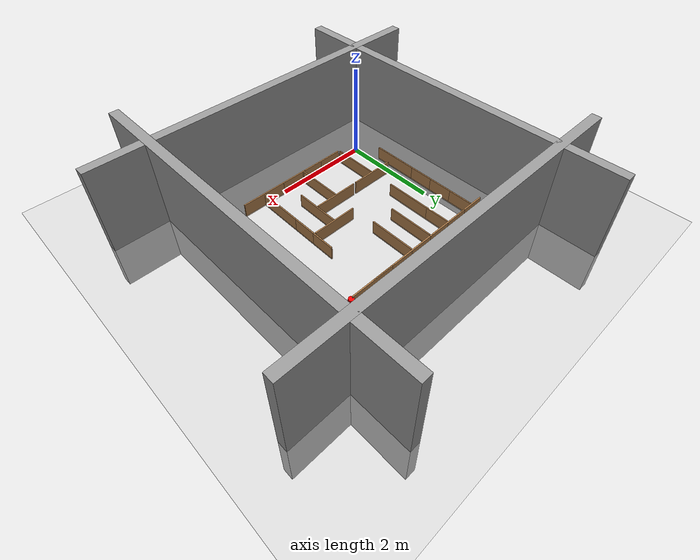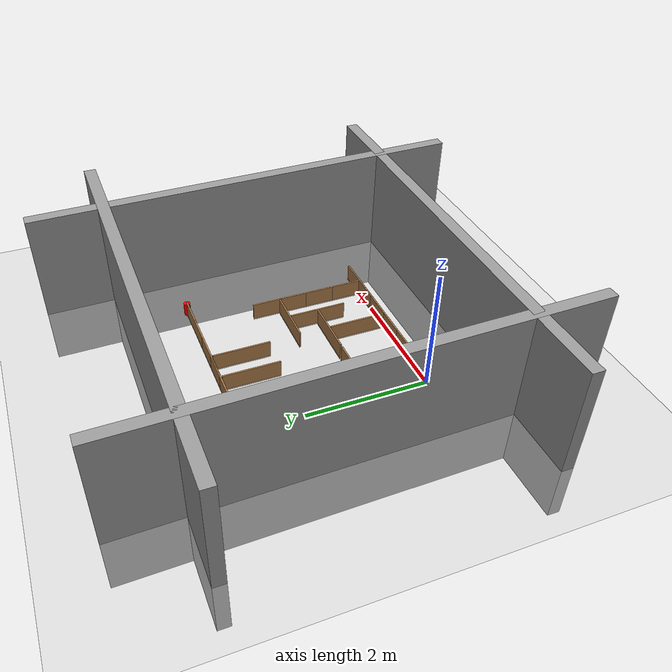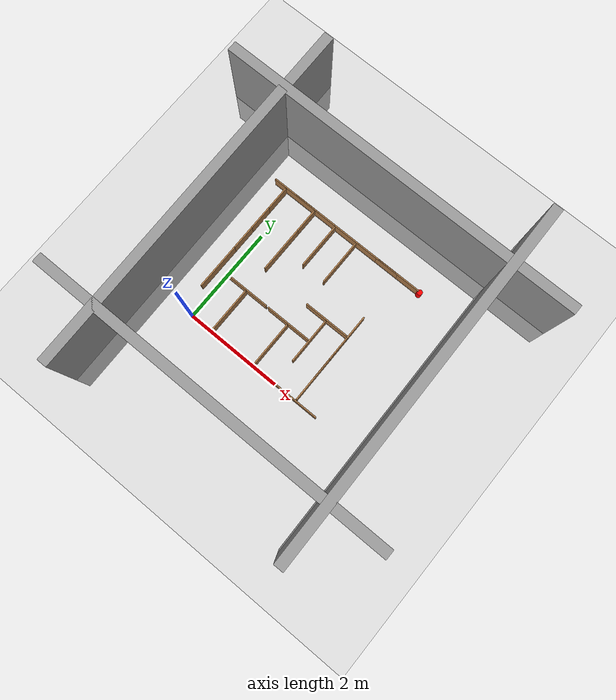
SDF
<sdf version="1.6">
 <world name="default">
  <light name="sun" type="directional">
   <pose>0 0 10 0 -0 0</pose>
   <diffuse>0.8 0.8 0.8 1</diffuse>
   <specular>0.1 0.1 0.1 1</specular>
   <attenuation>
    <range>1000</range>
    <constant>0.9</constant>
    <linear>0.01</linear>
    <quadratic>0.001</quadratic>
   </attenuation>
   <direction>-0.5 0.5 -1</direction>
  </light>
  <model name="ground_plane">
   <static>1</static>
   <link name="link">
    <collision name="collision">
     <geometry><plane><normal>0 0 1</normal><size>100 100</size></plane></geometry>
     <surface><friction><ode><mu>100</mu><mu2>50</mu2></ode></friction></surface>
    </collision>
    <visual name="visual">
     <cast_shadows>0</cast_shadows>
     <geometry><plane><normal>0 0 1</normal><size>100 100</size></plane></geometry>
     <material>
      <script><uri>file://media/materials/scripts/gazebo.material</uri><name>Gazebo/Grey</name></script>
     </material>
    </visual>
   </link>
  </model>
  <gravity>0 0 -9.8</gravity>
  <magnetic_field>6e-06 2.3e-05 -4.2e-05</magnetic_field>
  <atmosphere type="adiabatic"/>
  <physics name="default_physics" default="0" type="ode">
   <max_step_size>0.001</max_step_size>
   <real_time_factor>1</real_time_factor>
   <real_time_update_rate>1000</real_time_update_rate>
  </physics>
  <scene><ambient>0.4 0.4 0.4 1</ambient><background>0.7 0.7 0.7 1</background><shadows>1</shadows></scene>
  <spherical_coordinates>
   <surface_model>EARTH_WGS84</surface_model>
   <latitude_deg>0</latitude_deg>
   <longitude_deg>0</longitude_deg>
   <elevation>0</elevation>
   <heading_deg>0</heading_deg>
  </spherical_coordinates>
  <model name="goal">
   <link name="link">
    <pose>0 0 0.115 0 -0 0</pose>
    <inertial>
     <mass>0.0005</mass>
     <inertia><ixx>0.00058</ixx><ixy>0</ixy><ixz>0</ixz><iyy>0.00058</iyy><iyz>0</iyz><izz>0.00019</izz></inertia>
    </inertial>
    <visual name="visual">
     <geometry><cylinder><radius>0.055</radius><length>0.23</length></cylinder></geometry>
     <material>
      <script>
       <uri>model://beer/materials/scripts</uri>
       <uri>model://beer/materials/textures</uri>
       <name>Beer/Diffuse</name>
      </script>
      <ambient>1 0 0 1</ambient>
      <diffuse>1 0 0 1</diffuse>
      <specular>0 0 0 1</specular>
      <emissive>0 0 0 1</emissive>
      <shader type="vertex"><normal_map>__default__</normal_map></shader>
     </material>
    </visual>
    <collision name="collision">
     <geometry><cylinder><radius>0.055</radius><length>0.23</length></cylinder></geometry>
     <surface>
      <friction>
       <ode><mu>1</mu><mu2>1</mu2><fdir1>0 0 0</fdir1><slip1>0</slip1><slip2>0</slip2></ode>
       <torsional>
        <coefficient>1</coefficient>
        <patch_radius>0</patch_radius>
        <surface_radius>0</surface_radius>
        <use_patch_radius>1</use_patch_radius>
        <ode><slip>0</slip></ode>
       </torsional>
      </friction>
      <bounce><restitution_coefficient>0</restitution_coefficient><threshold>1e+06</threshold></bounce>
      <contact>
       <collide_without_contact>0</collide_without_contact>
       <collide_without_contact_bitmask>1</collide_without_contact_bitmask>
       <collide_bitmask>1</collide_bitmask>
       <ode>
        <soft_cfm>0</soft_cfm>
        <soft_erp>0.2</soft_erp>
        <kp>1e+13</kp>
        <kd>1</kd>
        <max_vel>0.01</max_vel>
        <min_depth>0</min_depth>
       </ode>
       <bullet>
        <split_impulse>1</split_impulse>
        <split_impulse_penetration_threshold>-0.01</split_impulse_penetration_threshold>
        <soft_cfm>0</soft_cfm>
        <soft_erp>0.2</soft_erp>
        <kp>1e+13</kp>
        <kd>1</kd>
       </bullet>
      </contact>
     </surface>
    </collision>
   </link>
   <static>0</static>
   <pose>3.0 3.0 -9e-06 -1e-06 -4e-06 0</pose>
  </model>
  <model name="wall1">
   <static>1</static>
   <link name="link">
    <pose>0 0 0.42 0 -0 0</pose>
    <collision name="collision"><geometry><box><size>7.5 0.2 2.8</size></box></geometry></collision>
    <visual name="visual">
     <cast_shadows>0</cast_shadows>
     <geometry><box><size>7.5 0.2 2.8</size></box></geometry>
     <material>
      <script>
       <uri>model://grey_wall/materials/scripts</uri>
       <uri>model://grey_wall/materials/textures</uri>
       <name>vrc/grey_wall</name>
      </script>
     </material>
    </visual>
   </link>
   <pose>-1 1.5 0 0 -0 -1.55905</pose>
  </model>
  <model name="wall2">
   <static>1</static>
   <link name="link">
    <pose>0 0 0.42 0 -0 0</pose>
    <collision name="collision"><geometry><box><size>7.5 0.2 2.8</size></box></geometry></collision>
    <visual name="visual">
     <cast_shadows>0</cast_shadows>
     <geometry><box><size>7.5 0.2 2.8</size></box></geometry>
     <material>
      <script>
       <uri>model://grey_wall/materials/scripts</uri>
       <uri>model://grey_wall/materials/textures</uri>
       <name>vrc/grey_wall</name>
      </script>
     </material>
    </visual>
   </link>
   <pose>1.5 4.0 0 0 -0 0</pose>
  </model>
  <model name="wall3">
   <static>1</static>
   <link name="link">
    <pose>0 0 0.42 0 -0 0</pose>
    <collision name="collision"><geometry><box><size>7.5 0.2 2.8</size></box></geometry></collision>
    <visual name="visual">
     <cast_shadows>0</cast_shadows>
     <geometry><box><size>7.5 0.2 2.8</size></box></geometry>
     <material>
      <script>
       <uri>model://grey_wall/materials/scripts</uri>
       <uri>model://grey_wall/materials/textures</uri>
       <name>vrc/grey_wall</name>
      </script>
     </material>
    </visual>
   </link>
   <pose>4.0 1.5 0 0 -0 -1.55905</pose>
  </model>
  <model name="wall4">
   <static>1</static>
   <link name="link">
    <pose>0 0 0.42 0 -0 0</pose>
    <collision name="collision"><geometry><box><size>7.5 0.2 2.8</size></box></geometry></collision>
    <visual name="visual">
     <cast_shadows>0</cast_shadows>
     <geometry><box><size>7.5 0.2 2.8</size></box></geometry>
     <material>
      <script>
       <uri>model://grey_wall/materials/scripts</uri>
       <uri>model://grey_wall/materials/textures</uri>
       <name>vrc/grey_wall</name>
      </script>
     </material>
    </visual>
   </link>
   <pose>1.5 -1 0 0 -0 0</pose>
  </model>
  <model name="can-0.21.0">
   <link name="link">
    <pose>0 0 0.115 0 -0 0</pose>
    <inertial>
     <mass>0.39</mass>
     <inertia><ixx>0.00058</ixx><ixy>0</ixy><ixz>0</ixz><iyy>0.00058</iyy><iyz>0</iyz><izz>0.00019</izz></inertia>
    </inertial>
    <collision name="collision"><geometry><box><size>0.025 0.95 0.3</size></box></geometry></collision>
    <visual name="visual">
     <geometry><box><size>0.025 0.95 0.3</size></box></geometry>
     <material>
      <script><uri>file://media/materials/scripts/gazebo.material</uri><name>Gazebo/Wood</name></script>
     </material>
    </visual>
   </link>
   <pose>-0.2 1.0 -2e-06 1e-06 0 -9.5e-05</pose>
  </model>
  <model name="can-0.21.5">
   <link name="link">
    <pose>0 0 0.115 0 -0 0</pose>
    <inertial>
     <mass>0.39</mass>
     <inertia><ixx>0.00058</ixx><ixy>0</ixy><ixz>0</ixz><iyy>0.00058</iyy><iyz>0</iyz><izz>0.00019</izz></inertia>
    </inertial>
    <collision name="collision"><geometry><box><size>0.025 0.95 0.3</size></box></geometry></collision>
    <visual name="visual">
     <geometry><box><size>0.025 0.95 0.3</size></box></geometry>
     <material>
      <script><uri>file://media/materials/scripts/gazebo.material</uri><name>Gazebo/Wood</name></script>
     </material>
    </visual>
   </link>
   <pose>-0.2 1.5 -2e-06 1e-06 0 -9.5e-05</pose>
  </model>
  <model name="can-0.22.0">
   <link name="link">
    <pose>0 0 0.115 0 -0 0</pose>
    <inertial>
     <mass>0.39</mass>
     <inertia><ixx>0.00058</ixx><ixy>0</ixy><ixz>0</ixz><iyy>0.00058</iyy><iyz>0</iyz><izz>0.00019</izz></inertia>
    </inertial>
    <collision name="collision"><geometry><box><size>0.025 0.95 0.3</size></box></geometry></collision>
    <visual name="visual">
     <geometry><box><size>0.025 0.95 0.3</size></box></geometry>
     <material>
      <script><uri>file://media/materials/scripts/gazebo.material</uri><name>Gazebo/Wood</name></script>
     </material>
    </visual>
   </link>
   <pose>-0.2 2.0 -2e-06 1e-06 0 -9.5e-05</pose>
  </model>
  <model name="can-0.22.5">
   <link name="link">
    <pose>0 0 0.115 0 -0 0</pose>
    <inertial>
     <mass>0.39</mass>
     <inertia><ixx>0.00058</ixx><ixy>0</ixy><ixz>0</ixz><iyy>0.00058</iyy><iyz>0</iyz><izz>0.00019</izz></inertia>
    </inertial>
    <collision name="collision"><geometry><box><size>0.025 0.95 0.3</size></box></geometry></collision>
    <visual name="visual">
     <geometry><box><size>0.025 0.95 0.3</size></box></geometry>
     <material>
      <script><uri>file://media/materials/scripts/gazebo.material</uri><name>Gazebo/Wood</name></script>
     </material>
    </visual>
   </link>
   <pose>-0.2 2.5 -2e-06 1e-06 0 -9.5e-05</pose>
  </model>
  <model name="can0.03.0">
   <link name="link">
    <pose>0 0 0.115 0 -0 0</pose>
    <inertial>
     <mass>0.39</mass>
     <inertia><ixx>0.00058</ixx><ixy>0</ixy><ixz>0</ixz><iyy>0.00058</iyy><iyz>0</iyz><izz>0.00019</izz></inertia>
    </inertial>
    <collision name="collision"><geometry><box><size>0.95 0.025 0.3</size></box></geometry></collision>
    <visual name="visual">
     <geometry><box><size>0.95 0.025 0.3</size></box></geometry>
     <material>
      <script><uri>file://media/materials/scripts/gazebo.material</uri><name>Gazebo/Wood</name></script>
     </material>
    </visual>
   </link>
   <pose>0.0 3.0 -2e-06 1e-06 0 -9.5e-05</pose>
  </model>
  <model name="can0.50.5">
   <link name="link">
    <pose>0 0 0.115 0 -0 0</pose>
    <inertial>
     <mass>0.39</mass>
     <inertia><ixx>0.00058</ixx><ixy>0</ixy><ixz>0</ixz><iyy>0.00058</iyy><iyz>0</iyz><izz>0.00019</izz></inertia>
    </inertial>
    <collision name="collision"><geometry><box><size>0.025 0.95 0.3</size></box></geometry></collision>
    <visual name="visual">
     <geometry><box><size>0.025 0.95 0.3</size></box></geometry>
     <material>
      <script><uri>file://media/materials/scripts/gazebo.material</uri><name>Gazebo/Wood</name></script>
     </material>
    </visual>
   </link>
   <pose>0.5 0.5 -2e-06 1e-06 0 -9.5e-05</pose>
  </model>
  <model name="can0.51.0">
   <link name="link">
    <pose>0 0 0.115 0 -0 0</pose>
    <inertial>
     <mass>0.39</mass>
     <inertia><ixx>0.00058</ixx><ixy>0</ixy><ixz>0</ixz><iyy>0.00058</iyy><iyz>0</iyz><izz>0.00019</izz></inertia>
    </inertial>
    <collision name="collision"><geometry><box><size>0.95 0.025 0.3</size></box></geometry></collision>
    <visual name="visual">
     <geometry><box><size>0.95 0.025 0.3</size></box></geometry>
     <material>
      <script><uri>file://media/materials/scripts/gazebo.material</uri><name>Gazebo/Wood</name></script>
     </material>
    </visual>
   </link>
   <pose>0.5 1.0 -2e-06 1e-06 0 -9.5e-05</pose>
  </model>
  <model name="can0.52.0">
   <link name="link">
    <pose>0 0 0.115 0 -0 0</pose>
    <inertial>
     <mass>0.39</mass>
     <inertia><ixx>0.00058</ixx><ixy>0</ixy><ixz>0</ixz><iyy>0.00058</iyy><iyz>0</iyz><izz>0.00019</izz></inertia>
    </inertial>
    <collision name="collision"><geometry><box><size>0.025 0.95 0.3</size></box></geometry></collision>
    <visual name="visual">
     <geometry><box><size>0.025 0.95 0.3</size></box></geometry>
     <material>
      <script><uri>file://media/materials/scripts/gazebo.material</uri><name>Gazebo/Wood</name></script>
     </material>
    </visual>
   </link>
   <pose>0.5 2.0 -2e-06 1e-06 0 -9.5e-05</pose>
  </model>
  <model name="can0.52.5">
   <link name="link">
    <pose>0 0 0.115 0 -0 0</pose>
    <inertial>
     <mass>0.39</mass>
     <inertia><ixx>0.00058</ixx><ixy>0</ixy><ixz>0</ixz><iyy>0.00058</iyy><iyz>0</iyz><izz>0.00019</izz></inertia>
    </inertial>
    <collision name="collision"><geometry><box><size>0.025 0.95 0.3</size></box></geometry></collision>
    <visual name="visual">
     <geometry><box><size>0.025 0.95 0.3</size></box></geometry>
     <material>
      <script><uri>file://media/materials/scripts/gazebo.material</uri><name>Gazebo/Wood</name></script>
     </material>
    </visual>
   </link>
   <pose>0.5 2.5 -2e-06 1e-06 0 -9.5e-05</pose>
  </model>
  <model name="can0.53.0">
   <link name="link">
    <pose>0 0 0.115 0 -0 0</pose>
    <inertial>
     <mass>0.39</mass>
     <inertia><ixx>0.00058</ixx><ixy>0</ixy><ixz>0</ixz><iyy>0.00058</iyy><iyz>0</iyz><izz>0.00019</izz></inertia>
    </inertial>
    <collision name="collision"><geometry><box><size>0.95 0.025 0.3</size></box></geometry></collision>
    <visual name="visual">
     <geometry><box><size>0.95 0.025 0.3</size></box></geometry>
     <material>
      <script><uri>file://media/materials/scripts/gazebo.material</uri><name>Gazebo/Wood</name></script>
     </material>
    </visual>
   </link>
   <pose>0.5 3.0 -2e-06 1e-06 0 -9.5e-05</pose>
  </model>
  <model name="can1.00.0">
   <link name="link">
    <pose>0 0 0.115 0 -0 0</pose>
    <inertial>
     <mass>0.39</mass>
     <inertia><ixx>0.00058</ixx><ixy>0</ixy><ixz>0</ixz><iyy>0.00058</iyy><iyz>0</iyz><izz>0.00019</izz></inertia>
    </inertial>
    <collision name="collision"><geometry><box><size>0.95 0.025 0.3</size></box></geometry></collision>
    <visual name="visual">
     <geometry><box><size>0.95 0.025 0.3</size></box></geometry>
     <material>
      <script><uri>file://media/materials/scripts/gazebo.material</uri><name>Gazebo/Wood</name></script>
     </material>
    </visual>
   </link>
   <pose>1.0 0.0 -2e-06 1e-06 0 -9.5e-05</pose>
  </model>
  <model name="can1.02.5">
   <link name="link">
    <pose>0 0 0.115 0 -0 0</pose>
    <inertial>
     <mass>0.39</mass>
     <inertia><ixx>0.00058</ixx><ixy>0</ixy><ixz>0</ixz><iyy>0.00058</iyy><iyz>0</iyz><izz>0.00019</izz></inertia>
    </inertial>
    <collision name="collision"><geometry><box><size>0.025 0.95 0.3</size></box></geometry></collision>
    <visual name="visual">
     <geometry><box><size>0.025 0.95 0.3</size></box></geometry>
     <material>
      <script><uri>file://media/materials/scripts/gazebo.material</uri><name>Gazebo/Wood</name></script>
     </material>
    </visual>
   </link>
   <pose>1.0 2.5 -2e-06 1e-06 0 -9.5e-05</pose>
  </model>
  <model name="can1.03.0">
   <link name="link">
    <pose>0 0 0.115 0 -0 0</pose>
    <inertial>
     <mass>0.39</mass>
     <inertia><ixx>0.00058</ixx><ixy>0</ixy><ixz>0</ixz><iyy>0.00058</iyy><iyz>0</iyz><izz>0.00019</izz></inertia>
    </inertial>
    <collision name="collision"><geometry><box><size>0.95 0.025 0.3</size></box></geometry></collision>
    <visual name="visual">
     <geometry><box><size>0.95 0.025 0.3</size></box></geometry>
     <material>
      <script><uri>file://media/materials/scripts/gazebo.material</uri><name>Gazebo/Wood</name></script>
     </material>
    </visual>
   </link>
   <pose>1.0 3.0 -2e-06 1e-06 0 -9.5e-05</pose>
  </model>
  <model name="can1.50.0">
   <link name="link">
    <pose>0 0 0.115 0 -0 0</pose>
    <inertial>
     <mass>0.39</mass>
     <inertia><ixx>0.00058</ixx><ixy>0</ixy><ixz>0</ixz><iyy>0.00058</iyy><iyz>0</iyz><izz>0.00019</izz></inertia>
    </inertial>
    <collision name="collision"><geometry><box><size>0.95 0.025 0.3</size></box></geometry></collision>
    <visual name="visual">
     <geometry><box><size>0.95 0.025 0.3</size></box></geometry>
     <material>
      <script><uri>file://media/materials/scripts/gazebo.material</uri><name>Gazebo/Wood</name></script>
     </material>
    </visual>
   </link>
   <pose>1.5 0.0 -2e-06 1e-06 0 -9.5e-05</pose>
  </model>
  <model name="can1.50.5">
   <link name="link">
    <pose>0 0 0.115 0 -0 0</pose>
    <inertial>
     <mass>0.39</mass>
     <inertia><ixx>0.00058</ixx><ixy>0</ixy><ixz>0</ixz><iyy>0.00058</iyy><iyz>0</iyz><izz>0.00019</izz></inertia>
    </inertial>
    <collision name="collision"><geometry><box><size>0.025 0.95 0.3</size></box></geometry></collision>
    <visual name="visual">
     <geometry><box><size>0.025 0.95 0.3</size></box></geometry>
     <material>
      <script><uri>file://media/materials/scripts/gazebo.material</uri><name>Gazebo/Wood</name></script>
     </material>
    </visual>
   </link>
   <pose>1.5 0.5 -2e-06 1e-06 0 -9.5e-05</pose>
  </model>
  <model name="can1.51.0">
   <link name="link">
    <pose>0 0 0.115 0 -0 0</pose>
    <inertial>
     <mass>0.39</mass>
     <inertia><ixx>0.00058</ixx><ixy>0</ixy><ixz>0</ixz><iyy>0.00058</iyy><iyz>0</iyz><izz>0.00019</izz></inertia>
    </inertial>
    <collision name="collision"><geometry><box><size>0.95 0.025 0.3</size></box></geometry></collision>
    <visual name="visual">
     <geometry><box><size>0.95 0.025 0.3</size></box></geometry>
     <material>
      <script><uri>file://media/materials/scripts/gazebo.material</uri><name>Gazebo/Wood</name></script>
     </material>
    </visual>
   </link>
   <pose>1.5 1.0 -2e-06 1e-06 0 -9.5e-05</pose>
  </model>
  <model name="can1.52.5">
   <link name="link">
    <pose>0 0 0.115 0 -0 0</pose>
    <inertial>
     <mass>0.39</mass>
     <inertia><ixx>0.00058</ixx><ixy>0</ixy><ixz>0</ixz><iyy>0.00058</iyy><iyz>0</iyz><izz>0.00019</izz></inertia>
    </inertial>
    <collision name="collision"><geometry><box><size>0.025 0.95 0.3</size></box></geometry></collision>
    <visual name="visual">
     <geometry><box><size>0.025 0.95 0.3</size></box></geometry>
     <material>
      <script><uri>file://media/materials/scripts/gazebo.material</uri><name>Gazebo/Wood</name></script>
     </material>
    </visual>
   </link>
   <pose>1.5 2.5 -2e-06 1e-06 0 -9.5e-05</pose>
  </model>
  <model name="can1.53.0">
   <link name="link">
    <pose>0 0 0.115 0 -0 0</pose>
    <inertial>
     <mass>0.39</mass>
     <inertia><ixx>0.00058</ixx><ixy>0</ixy><ixz>0</ixz><iyy>0.00058</iyy><iyz>0</iyz><izz>0.00019</izz></inertia>
    </inertial>
    <collision name="collision"><geometry><box><size>0.95 0.025 0.3</size></box></geometry></collision>
    <visual name="visual">
     <geometry><box><size>0.95 0.025 0.3</size></box></geometry>
     <material>
      <script><uri>file://media/materials/scripts/gazebo.material</uri><name>Gazebo/Wood</name></script>
     </material>
    </visual>
   </link>
   <pose>1.5 3.0 -2e-06 1e-06 0 -9.5e-05</pose>
  </model>
  <model name="can2.00.0">
   <link name="link">
    <pose>0 0 0.115 0 -0 0</pose>
    <inertial>
     <mass>0.39</mass>
     <inertia><ixx>0.00058</ixx><ixy>0</ixy><ixz>0</ixz><iyy>0.00058</iyy><iyz>0</iyz><izz>0.00019</izz></inertia>
    </inertial>
    <collision name="collision"><geometry><box><size>0.95 0.025 0.3</size></box></geometry></collision>
    <visual name="visual">
     <geometry><box><size>0.95 0.025 0.3</size></box></geometry>
     <material>
      <script><uri>file://media/materials/scripts/gazebo.material</uri><name>Gazebo/Wood</name></script>
     </material>
    </visual>
   </link>
   <pose>2.0 0.0 -2e-06 1e-06 0 -9.5e-05</pose>
  </model>
  <model name="can2.01.0">
   <link name="link">
    <pose>0 0 0.115 0 -0 0</pose>
    <inertial>
     <mass>0.39</mass>
     <inertia><ixx>0.00058</ixx><ixy>0</ixy><ixz>0</ixz><iyy>0.00058</iyy><iyz>0</iyz><izz>0.00019</izz></inertia>
    </inertial>
    <collision name="collision"><geometry><box><size>0.025 0.95 0.3</size></box></geometry></collision>
    <visual name="visual">
     <geometry><box><size>0.025 0.95 0.3</size></box></geometry>
     <material>
      <script><uri>file://media/materials/scripts/gazebo.material</uri><name>Gazebo/Wood</name></script>
     </material>
    </visual>
   </link>
   <pose>2.0 1.0 -2e-06 1e-06 0 -9.5e-05</pose>
  </model>
  <model name="can2.01.5">
   <link name="link">
    <pose>0 0 0.115 0 -0 0</pose>
    <inertial>
     <mass>0.39</mass>
     <inertia><ixx>0.00058</ixx><ixy>0</ixy><ixz>0</ixz><iyy>0.00058</iyy><iyz>0</iyz><izz>0.00019</izz></inertia>
    </inertial>
    <collision name="collision"><geometry><box><size>0.95 0.025 0.3</size></box></geometry></collision>
    <visual name="visual">
     <geometry><box><size>0.95 0.025 0.3</size></box></geometry>
     <material>
      <script><uri>file://media/materials/scripts/gazebo.material</uri><name>Gazebo/Wood</name></script>
     </material>
    </visual>
   </link>
   <pose>2.0 1.5 -2e-06 1e-06 0 -9.5e-05</pose>
  </model>
  <model name="can2.03.0">
   <link name="link">
    <pose>0 0 0.115 0 -0 0</pose>
    <inertial>
     <mass>0.39</mass>
     <inertia><ixx>0.00058</ixx><ixy>0</ixy><ixz>0</ixz><iyy>0.00058</iyy><iyz>0</iyz><izz>0.00019</izz></inertia>
    </inertial>
    <collision name="collision"><geometry><box><size>0.95 0.025 0.3</size></box></geometry></collision>
    <visual name="visual">
     <geometry><box><size>0.95 0.025 0.3</size></box></geometry>
     <material>
      <script><uri>file://media/materials/scripts/gazebo.material</uri><name>Gazebo/Wood</name></script>
     </material>
    </visual>
   </link>
   <pose>2.0 3.0 -2e-06 1e-06 0 -9.5e-05</pose>
  </model>
  <model name="can2.50.0">
   <link name="link">
    <pose>0 0 0.115 0 -0 0</pose>
    <inertial>
     <mass>0.39</mass>
     <inertia><ixx>0.00058</ixx><ixy>0</ixy><ixz>0</ixz><iyy>0.00058</iyy><iyz>0</iyz><izz>0.00019</izz></inertia>
    </inertial>
    <collision name="collision"><geometry><box><size>0.95 0.025 0.3</size></box></geometry></collision>
    <visual name="visual">
     <geometry><box><size>0.95 0.025 0.3</size></box></geometry>
     <material>
      <script><uri>file://media/materials/scripts/gazebo.material</uri><name>Gazebo/Wood</name></script>
     </material>
    </visual>
   </link>
   <pose>2.5 0.0 -2e-06 1e-06 0 -9.5e-05</pose>
  </model>
  <model name="can2.50.5">
   <link name="link">
    <pose>0 0 0.115 0 -0 0</pose>
    <inertial>
     <mass>0.39</mass>
     <inertia><ixx>0.00058</ixx><ixy>0</ixy><ixz>0</ixz><iyy>0.00058</iyy><iyz>0</iyz><izz>0.00019</izz></inertia>
    </inertial>
    <collision name="collision"><geometry><box><size>0.025 0.95 0.3</size></box></geometry></collision>
    <visual name="visual">
     <geometry><box><size>0.025 0.95 0.3</size></box></geometry>
     <material>
      <script><uri>file://media/materials/scripts/gazebo.material</uri><name>Gazebo/Wood</name></script>
     </material>
    </visual>
   </link>
   <pose>2.5 0.5 -2e-06 1e-06 0 -9.5e-05</pose>
  </model>
  <model name="can2.51.0">
   <link name="link">
    <pose>0 0 0.115 0 -0 0</pose>
    <inertial>
     <mass>0.39</mass>
     <inertia><ixx>0.00058</ixx><ixy>0</ixy><ixz>0</ixz><iyy>0.00058</iyy><iyz>0</iyz><izz>0.00019</izz></inertia>
    </inertial>
    <collision name="collision"><geometry><box><size>0.025 0.95 0.3</size></box></geometry></collision>
    <visual name="visual">
     <geometry><box><size>0.025 0.95 0.3</size></box></geometry>
     <material>
      <script><uri>file://media/materials/scripts/gazebo.material</uri><name>Gazebo/Wood</name></script>
     </material>
    </visual>
   </link>
   <pose>2.5 1.0 -2e-06 1e-06 0 -9.5e-05</pose>
  </model>
  <model name="can2.51.5">
   <link name="link">
    <pose>0 0 0.115 0 -0 0</pose>
    <inertial>
     <mass>0.39</mass>
     <inertia><ixx>0.00058</ixx><ixy>0</ixy><ixz>0</ixz><iyy>0.00058</iyy><iyz>0</iyz><izz>0.00019</izz></inertia>
    </inertial>
    <collision name="collision"><geometry><box><size>0.025 0.95 0.3</size></box></geometry></collision>
    <visual name="visual">
     <geometry><box><size>0.025 0.95 0.3</size></box></geometry>
     <material>
      <script><uri>file://media/materials/scripts/gazebo.material</uri><name>Gazebo/Wood</name></script>
     </material>
    </visual>
   </link>
   <pose>2.5 1.5 -2e-06 1e-06 0 -9.5e-05</pose>
  </model>
  <model name="can2.53.0">
   <link name="link">
    <pose>0 0 0.115 0 -0 0</pose>
    <inertial>
     <mass>0.39</mass>
     <inertia><ixx>0.00058</ixx><ixy>0</ixy><ixz>0</ixz><iyy>0.00058</iyy><iyz>0</iyz><izz>0.00019</izz></inertia>
    </inertial>
    <collision name="collision"><geometry><box><size>0.95 0.025 0.3</size></box></geometry></collision>
    <visual name="visual">
     <geometry><box><size>0.95 0.025 0.3</size></box></geometry>
     <material>
      <script><uri>file://media/materials/scripts/gazebo.material</uri><name>Gazebo/Wood</name></script>
     </material>
    </visual>
   </link>
   <pose>2.5 3.0 -2e-06 1e-06 0 -9.5e-05</pose>
  </model>
 </world>
</sdf>
